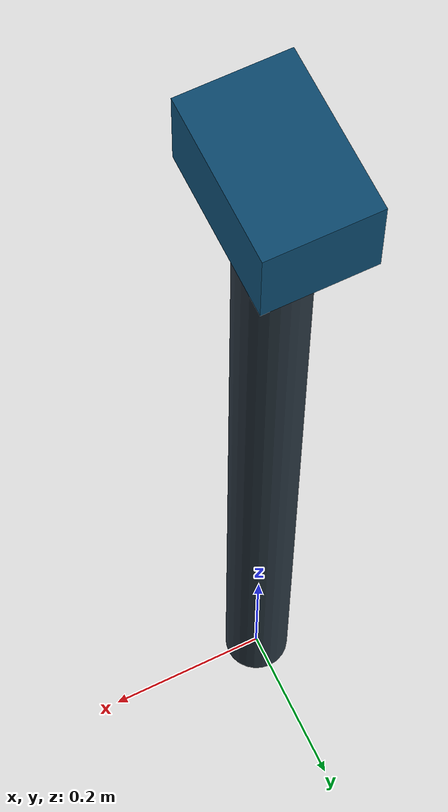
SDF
<?xml version="1.0"?>
<sdf version="1.9">
  <model name="hall_camera_model">
    <static>true</static>
    <link name="body">
      <visual name="post"><pose>0 0 0.6 0 0 0</pose><geometry><cylinder><radius>0.04</radius><length>1.2</length></cylinder></geometry><material><ambient>0.15 0.2 0.24 1</ambient><diffuse>0.15 0.2 0.24 1</diffuse></material></visual>
      <visual name="camera"><pose>0 0 1.2 0 0 1.5707963268</pose><geometry><box><size>0.18 0.12 0.10</size></box></geometry><material><ambient>0.05 0.3 0.45 1</ambient><diffuse>0.05 0.3 0.45 1</diffuse></material></visual>
      <visual name="lens"><pose>0 0.071 1.2 1.5707963268 0 0</pose><geometry><cylinder><radius>0.035</radius><length>0.025</length></cylinder></geometry><material><ambient>0.02 0.02 0.02 1</ambient><diffuse>0.02 0.02 0.02 1</diffuse></material></visual>
    </link>
  </model>
</sdf>
